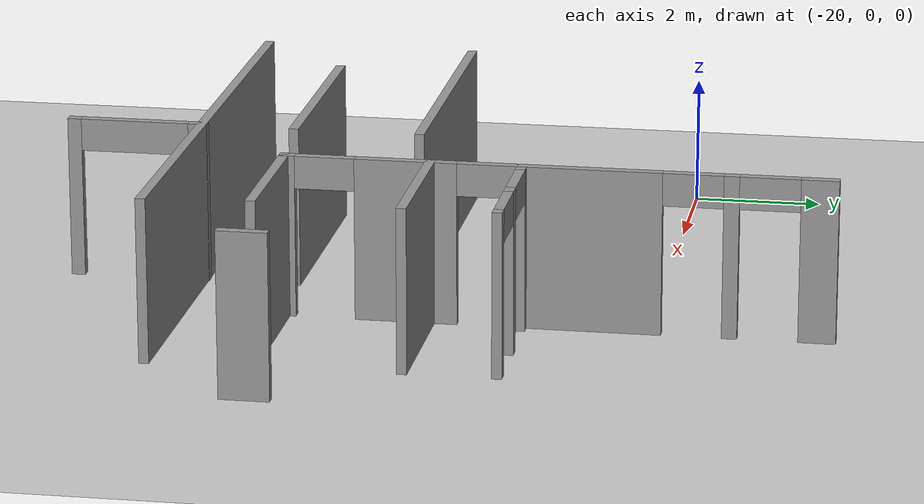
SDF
<sdf version="1.7">
 <world name="default">
  <model name="ground_plane">
   <static>1</static>
   <link name="link">
    <collision name="collision">
     <geometry><plane><normal>0 0 1</normal><size>100 100</size></plane></geometry>
     <surface><friction><ode><mu>100</mu><mu2>50</mu2></ode></friction></surface>
    </collision>
    <visual name="visual">
     <cast_shadows>0</cast_shadows>
     <geometry><plane><normal>0 0 1</normal><size>100 100</size></plane></geometry>
     <material>
      <script><uri>file://media/materials/scripts/gazebo.material</uri><name>Gazebo/Grey</name></script>
     </material>
    </visual>
   </link>
  </model>
  <model name="batimentH">
   <link name="Wall_14">
    <pose>-7.47746 0.99768 0 0 0 -1.5708</pose>
    <visual name="Wall_14_Visual_0">
     <pose>-3.88396 0 1.25 0 -0 0</pose>
     <geometry><box><size>0.55862 0.15 2.5</size></box></geometry>
     <material>
      <script><uri>file://media/materials/scripts/gazebo.material</uri><name>Gazebo/Grey</name></script>
      <ambient>1 1 1 1</ambient>
      <shader type="pixel"/>
     </material>
     <meta><layer>0</layer></meta>
    </visual>
    <visual name="Wall_14_Visual_1">
     <pose>-2.59002 0 1.25 0 -0 0</pose>
     <geometry><box><size>0.22926 0.15 2.5</size></box></geometry>
     <material>
      <script><uri>file://media/materials/scripts/gazebo.material</uri><name>Gazebo/Grey</name></script>
      <ambient>1 1 1 1</ambient>
      <shader type="pixel"/>
     </material>
     <meta><layer>0</layer></meta>
    </visual>
    <visual name="Wall_14_Visual_2">
     <pose>-0.49809 0 1.25 0 -0 0</pose>
     <geometry><box><size>2.15459 0.15 2.5</size></box></geometry>
     <material>
      <script><uri>file://media/materials/scripts/gazebo.material</uri><name>Gazebo/Grey</name></script>
      <ambient>1 1 1 1</ambient>
      <shader type="pixel"/>
     </material>
     <meta><layer>0</layer></meta>
    </visual>
    <visual name="Wall_14_Visual_3">
     <pose>2.25155 0 1.25 0 -0 0</pose>
     <geometry><box><size>1.54468 0.15 2.5</size></box></geometry>
     <material>
      <script><uri>file://media/materials/scripts/gazebo.material</uri><name>Gazebo/Grey</name></script>
      <ambient>1 1 1 1</ambient>
      <shader type="pixel"/>
     </material>
     <meta><layer>0</layer></meta>
    </visual>
    <visual name="Wall_14_Visual_4">
     <pose>4.04358 0 1.25 0 -0 0</pose>
     <geometry><box><size>0.239381 0.15 2.5</size></box></geometry>
     <material>
      <script><uri>file://media/materials/scripts/gazebo.material</uri><name>Gazebo/Grey</name></script>
      <ambient>1 1 1 1</ambient>
      <shader type="pixel"/>
     </material>
     <meta><layer>0</layer></meta>
    </visual>
    <visual name="Wall_14_Visual_5">
     <pose>-3.15465 0 2.25 0 -0 0</pose>
     <geometry><box><size>0.9 0.15 0.5</size></box></geometry>
     <material>
      <script><uri>file://media/materials/scripts/gazebo.material</uri><name>Gazebo/Grey</name></script>
      <ambient>1 1 1 1</ambient>
      <shader type="pixel"/>
     </material>
     <meta><layer>0</layer></meta>
    </visual>
    <visual name="Wall_14_Visual_6">
     <pose>-2.02539 0 2.25 0 -0 0</pose>
     <geometry><box><size>0.9 0.15 0.5</size></box></geometry>
     <material>
      <script><uri>file://media/materials/scripts/gazebo.material</uri><name>Gazebo/Grey</name></script>
      <ambient>1 1 1 1</ambient>
      <shader type="pixel"/>
     </material>
     <meta><layer>0</layer></meta>
    </visual>
    <visual name="Wall_14_Visual_7">
     <pose>1.02921 0 2.25 0 -0 0</pose>
     <geometry><box><size>0.9 0.15 0.5</size></box></geometry>
     <material>
      <script><uri>file://media/materials/scripts/gazebo.material</uri><name>Gazebo/Grey</name></script>
      <ambient>1 1 1 1</ambient>
      <shader type="pixel"/>
     </material>
     <meta><layer>0</layer></meta>
    </visual>
    <visual name="Wall_14_Visual_8">
     <pose>3.47389 0 2.25 0 -0 0</pose>
     <geometry><box><size>0.9 0.15 0.5</size></box></geometry>
     <material>
      <script><uri>file://media/materials/scripts/gazebo.material</uri><name>Gazebo/Grey</name></script>
      <ambient>1 1 1 1</ambient>
      <shader type="pixel"/>
     </material>
     <meta><layer>0</layer></meta>
    </visual>
    <collision name="Wall_14_Collision_0">
     <pose>-3.88396 0 1.25 0 -0 0</pose>
     <geometry><box><size>0.55862 0.15 2.5</size></box></geometry>
     <surface>
      <friction>
       <ode><mu>1</mu><mu2>1</mu2><fdir1>0 0 0</fdir1><slip1>0</slip1><slip2>0</slip2></ode>
       <torsional>
        <coefficient>1</coefficient>
        <patch_radius>0</patch_radius>
        <surface_radius>0</surface_radius>
        <use_patch_radius>1</use_patch_radius>
        <ode><slip>0</slip></ode>
       </torsional>
      </friction>
      <bounce><restitution_coefficient>0</restitution_coefficient><threshold>1e+06</threshold></bounce>
      <contact>
       <collide_without_contact>0</collide_without_contact>
       <collide_without_contact_bitmask>1</collide_without_contact_bitmask>
       <collide_bitmask>1</collide_bitmask>
       <ode>
        <soft_cfm>0</soft_cfm>
        <soft_erp>0.2</soft_erp>
        <kp>1e+13</kp>
        <kd>1</kd>
        <max_vel>0.01</max_vel>
        <min_depth>0</min_depth>
       </ode>
       <bullet>
        <split_impulse>1</split_impulse>
        <split_impulse_penetration_threshold>-0.01</split_impulse_penetration_threshold>
        <soft_cfm>0</soft_cfm>
        <soft_erp>0.2</soft_erp>
        <kp>1e+13</kp>
        <kd>1</kd>
       </bullet>
      </contact>
     </surface>
    </collision>
    <collision name="Wall_14_Collision_1">
     <pose>-2.59002 0 1.25 0 -0 0</pose>
     <geometry><box><size>0.22926 0.15 2.5</size></box></geometry>
     <surface>
      <friction>
       <ode><mu>1</mu><mu2>1</mu2><fdir1>0 0 0</fdir1><slip1>0</slip1><slip2>0</slip2></ode>
       <torsional>
        <coefficient>1</coefficient>
        <patch_radius>0</patch_radius>
        <surface_radius>0</surface_radius>
        <use_patch_radius>1</use_patch_radius>
        <ode><slip>0</slip></ode>
       </torsional>
      </friction>
      <bounce><restitution_coefficient>0</restitution_coefficient><threshold>1e+06</threshold></bounce>
      <contact>
       <collide_without_contact>0</collide_without_contact>
       <collide_without_contact_bitmask>1</collide_without_contact_bitmask>
       <collide_bitmask>1</collide_bitmask>
       <ode>
        <soft_cfm>0</soft_cfm>
        <soft_erp>0.2</soft_erp>
        <kp>1e+13</kp>
        <kd>1</kd>
        <max_vel>0.01</max_vel>
        <min_depth>0</min_depth>
       </ode>
       <bullet>
        <split_impulse>1</split_impulse>
        <split_impulse_penetration_threshold>-0.01</split_impulse_penetration_threshold>
        <soft_cfm>0</soft_cfm>
        <soft_erp>0.2</soft_erp>
        <kp>1e+13</kp>
        <kd>1</kd>
       </bullet>
      </contact>
     </surface>
    </collision>
    <collision name="Wall_14_Collision_2">
     <pose>-0.49809 0 1.25 0 -0 0</pose>
     <geometry><box><size>2.15459 0.15 2.5</size></box></geometry>
     <surface>
      <friction>
       <ode><mu>1</mu><mu2>1</mu2><fdir1>0 0 0</fdir1><slip1>0</slip1><slip2>0</slip2></ode>
       <torsional>
        <coefficient>1</coefficient>
        <patch_radius>0</patch_radius>
        <surface_radius>0</surface_radius>
        <use_patch_radius>1</use_patch_radius>
        <ode><slip>0</slip></ode>
       </torsional>
      </friction>
      <bounce><restitution_coefficient>0</restitution_coefficient><threshold>1e+06</threshold></bounce>
      <contact>
       <collide_without_contact>0</collide_without_contact>
       <collide_without_contact_bitmask>1</collide_without_contact_bitmask>
       <collide_bitmask>1</collide_bitmask>
       <ode>
        <soft_cfm>0</soft_cfm>
        <soft_erp>0.2</soft_erp>
        <kp>1e+13</kp>
        <kd>1</kd>
        <max_vel>0.01</max_vel>
        <min_depth>0</min_depth>
       </ode>
       <bullet>
        <split_impulse>1</split_impulse>
        <split_impulse_penetration_threshold>-0.01</split_impulse_penetration_threshold>
        <soft_cfm>0</soft_cfm>
        <soft_erp>0.2</soft_erp>
        <kp>1e+13</kp>
        <kd>1</kd>
       </bullet>
      </contact>
     </surface>
    </collision>
    <collision name="Wall_14_Collision_3">
     <pose>2.25155 0 1.25 0 -0 0</pose>
     <geometry><box><size>1.54468 0.15 2.5</size></box></geometry>
     <surface>
      <friction>
       <ode><mu>1</mu><mu2>1</mu2><fdir1>0 0 0</fdir1><slip1>0</slip1><slip2>0</slip2></ode>
       <torsional>
        <coefficient>1</coefficient>
        <patch_radius>0</patch_radius>
        <surface_radius>0</surface_radius>
        <use_patch_radius>1</use_patch_radius>
        <ode><slip>0</slip></ode>
       </torsional>
      </friction>
      <bounce><restitution_coefficient>0</restitution_coefficient><threshold>1e+06</threshold></bounce>
      <contact>
       <collide_without_contact>0</collide_without_contact>
       <collide_without_contact_bitmask>1</collide_without_contact_bitmask>
       <collide_bitmask>1</collide_bitmask>
       <ode>
        <soft_cfm>0</soft_cfm>
        <soft_erp>0.2</soft_erp>
        <kp>1e+13</kp>
        <kd>1</kd>
        <max_vel>0.01</max_vel>
        <min_depth>0</min_depth>
       </ode>
       <bullet>
        <split_impulse>1</split_impulse>
        <split_impulse_penetration_threshold>-0.01</split_impulse_penetration_threshold>
        <soft_cfm>0</soft_cfm>
        <soft_erp>0.2</soft_erp>
        <kp>1e+13</kp>
        <kd>1</kd>
       </bullet>
      </contact>
     </surface>
    </collision>
    <collision name="Wall_14_Collision_4">
     <pose>4.04358 0 1.25 0 -0 0</pose>
     <geometry><box><size>0.239381 0.15 2.5</size></box></geometry>
     <surface>
      <friction>
       <ode><mu>1</mu><mu2>1</mu2><fdir1>0 0 0</fdir1><slip1>0</slip1><slip2>0</slip2></ode>
       <torsional>
        <coefficient>1</coefficient>
        <patch_radius>0</patch_radius>
        <surface_radius>0</surface_radius>
        <use_patch_radius>1</use_patch_radius>
        <ode><slip>0</slip></ode>
       </torsional>
      </friction>
      <bounce><restitution_coefficient>0</restitution_coefficient><threshold>1e+06</threshold></bounce>
      <contact>
       <collide_without_contact>0</collide_without_contact>
       <collide_without_contact_bitmask>1</collide_without_contact_bitmask>
       <collide_bitmask>1</collide_bitmask>
       <ode>
        <soft_cfm>0</soft_cfm>
        <soft_erp>0.2</soft_erp>
        <kp>1e+13</kp>
        <kd>1</kd>
        <max_vel>0.01</max_vel>
        <min_depth>0</min_depth>
       </ode>
       <bullet>
        <split_impulse>1</split_impulse>
        <split_impulse_penetration_threshold>-0.01</split_impulse_penetration_threshold>
        <soft_cfm>0</soft_cfm>
        <soft_erp>0.2</soft_erp>
        <kp>1e+13</kp>
        <kd>1</kd>
       </bullet>
      </contact>
     </surface>
    </collision>
    <collision name="Wall_14_Collision_5">
     <pose>-3.15465 0 2.25 0 -0 0</pose>
     <geometry><box><size>0.9 0.15 0.5</size></box></geometry>
     <surface>
      <friction>
       <ode><mu>1</mu><mu2>1</mu2><fdir1>0 0 0</fdir1><slip1>0</slip1><slip2>0</slip2></ode>
       <torsional>
        <coefficient>1</coefficient>
        <patch_radius>0</patch_radius>
        <surface_radius>0</surface_radius>
        <use_patch_radius>1</use_patch_radius>
        <ode><slip>0</slip></ode>
       </torsional>
      </friction>
      <bounce><restitution_coefficient>0</restitution_coefficient><threshold>1e+06</threshold></bounce>
      <contact>
       <collide_without_contact>0</collide_without_contact>
       <collide_without_contact_bitmask>1</collide_without_contact_bitmask>
       <collide_bitmask>1</collide_bitmask>
       <ode>
        <soft_cfm>0</soft_cfm>
        <soft_erp>0.2</soft_erp>
        <kp>1e+13</kp>
        <kd>1</kd>
        <max_vel>0.01</max_vel>
        <min_depth>0</min_depth>
       </ode>
       <bullet>
        <split_impulse>1</split_impulse>
        <split_impulse_penetration_threshold>-0.01</split_impulse_penetration_threshold>
        <soft_cfm>0</soft_cfm>
        <soft_erp>0.2</soft_erp>
        <kp>1e+13</kp>
        <kd>1</kd>
       </bullet>
      </contact>
     </surface>
    </collision>
    <collision name="Wall_14_Collision_6">
     <pose>-2.02539 0 2.25 0 -0 0</pose>
     <geometry><box><size>0.9 0.15 0.5</size></box></geometry>
     <surface>
      <friction>
       <ode><mu>1</mu><mu2>1</mu2><fdir1>0 0 0</fdir1><slip1>0</slip1><slip2>0</slip2></ode>
       <torsional>
        <coefficient>1</coefficient>
        <patch_radius>0</patch_radius>
        <surface_radius>0</surface_radius>
        <use_patch_radius>1</use_patch_radius>
        <ode><slip>0</slip></ode>
       </torsional>
      </friction>
      <bounce><restitution_coefficient>0</restitution_coefficient><threshold>1e+06</threshold></bounce>
      <contact>
       <collide_without_contact>0</collide_without_contact>
       <collide_without_contact_bitmask>1</collide_without_contact_bitmask>
       <collide_bitmask>1</collide_bitmask>
       <ode>
        <soft_cfm>0</soft_cfm>
        <soft_erp>0.2</soft_erp>
        <kp>1e+13</kp>
        <kd>1</kd>
        <max_vel>0.01</max_vel>
        <min_depth>0</min_depth>
       </ode>
       <bullet>
        <split_impulse>1</split_impulse>
        <split_impulse_penetration_threshold>-0.01</split_impulse_penetration_threshold>
        <soft_cfm>0</soft_cfm>
        <soft_erp>0.2</soft_erp>
        <kp>1e+13</kp>
        <kd>1</kd>
       </bullet>
      </contact>
     </surface>
    </collision>
    <collision name="Wall_14_Collision_7">
     <pose>1.02921 0 2.25 0 -0 0</pose>
     <geometry><box><size>0.9 0.15 0.5</size></box></geometry>
     <surface>
      <friction>
       <ode><mu>1</mu><mu2>1</mu2><fdir1>0 0 0</fdir1><slip1>0</slip1><slip2>0</slip2></ode>
       <torsional>
        <coefficient>1</coefficient>
        <patch_radius>0</patch_radius>
        <surface_radius>0</surface_radius>
        <use_patch_radius>1</use_patch_radius>
        <ode><slip>0</slip></ode>
       </torsional>
      </friction>
      <bounce><restitution_coefficient>0</restitution_coefficient><threshold>1e+06</threshold></bounce>
      <contact>
       <collide_without_contact>0</collide_without_contact>
       <collide_without_contact_bitmask>1</collide_without_contact_bitmask>
       <collide_bitmask>1</collide_bitmask>
       <ode>
        <soft_cfm>0</soft_cfm>
        <soft_erp>0.2</soft_erp>
        <kp>1e+13</kp>
        <kd>1</kd>
        <max_vel>0.01</max_vel>
        <min_depth>0</min_depth>
       </ode>
       <bullet>
        <split_impulse>1</split_impulse>
        <split_impulse_penetration_threshold>-0.01</split_impulse_penetration_threshold>
        <soft_cfm>0</soft_cfm>
        <soft_erp>0.2</soft_erp>
        <kp>1e+13</kp>
        <kd>1</kd>
       </bullet>
      </contact>
     </surface>
    </collision>
    <collision name="Wall_14_Collision_8">
     <pose>3.47389 0 2.25 0 -0 0</pose>
     <geometry><box><size>0.9 0.15 0.5</size></box></geometry>
     <surface>
      <friction>
       <ode><mu>1</mu><mu2>1</mu2><fdir1>0 0 0</fdir1><slip1>0</slip1><slip2>0</slip2></ode>
       <torsional>
        <coefficient>1</coefficient>
        <patch_radius>0</patch_radius>
        <surface_radius>0</surface_radius>
        <use_patch_radius>1</use_patch_radius>
        <ode><slip>0</slip></ode>
       </torsional>
      </friction>
      <bounce><restitution_coefficient>0</restitution_coefficient><threshold>1e+06</threshold></bounce>
      <contact>
       <collide_without_contact>0</collide_without_contact>
       <collide_without_contact_bitmask>1</collide_without_contact_bitmask>
       <collide_bitmask>1</collide_bitmask>
       <ode>
        <soft_cfm>0</soft_cfm>
        <soft_erp>0.2</soft_erp>
        <kp>1e+13</kp>
        <kd>1</kd>
        <max_vel>0.01</max_vel>
        <min_depth>0</min_depth>
       </ode>
       <bullet>
        <split_impulse>1</split_impulse>
        <split_impulse_penetration_threshold>-0.01</split_impulse_penetration_threshold>
        <soft_cfm>0</soft_cfm>
        <soft_erp>0.2</soft_erp>
        <kp>1e+13</kp>
        <kd>1</kd>
       </bullet>
      </contact>
     </surface>
    </collision>
   </link>
   <link name="Wall_15">
    <pose>-6.31775 -3.09056 0 0 -0 0</pose>
    <visual name="Wall_15_Visual">
     <pose>0 0 1.25 0 -0 0</pose>
     <geometry><box><size>2.5 0.15 2.5</size></box></geometry>
     <material>
      <script><uri>file://media/materials/scripts/gazebo.material</uri><name>Gazebo/Grey</name></script>
      <ambient>1 1 1 1</ambient>
      <shader type="pixel"/>
     </material>
     <meta><layer>0</layer></meta>
    </visual>
    <collision name="Wall_15_Collision">
     <pose>0 0 1.25 0 -0 0</pose>
     <geometry><box><size>2.5 0.15 2.5</size></box></geometry>
     <surface>
      <friction>
       <ode><mu>1</mu><mu2>1</mu2><fdir1>0 0 0</fdir1><slip1>0</slip1><slip2>0</slip2></ode>
       <torsional>
        <coefficient>1</coefficient>
        <patch_radius>0</patch_radius>
        <surface_radius>0</surface_radius>
        <use_patch_radius>1</use_patch_radius>
        <ode><slip>0</slip></ode>
       </torsional>
      </friction>
      <bounce><restitution_coefficient>0</restitution_coefficient><threshold>1e+06</threshold></bounce>
      <contact>
       <collide_without_contact>0</collide_without_contact>
       <collide_without_contact_bitmask>1</collide_without_contact_bitmask>
       <collide_bitmask>1</collide_bitmask>
       <ode>
        <soft_cfm>0</soft_cfm>
        <soft_erp>0.2</soft_erp>
        <kp>1e+13</kp>
        <kd>1</kd>
        <max_vel>0.01</max_vel>
        <min_depth>0</min_depth>
       </ode>
       <bullet>
        <split_impulse>1</split_impulse>
        <split_impulse_penetration_threshold>-0.01</split_impulse_penetration_threshold>
        <soft_cfm>0</soft_cfm>
        <soft_erp>0.2</soft_erp>
        <kp>1e+13</kp>
        <kd>1</kd>
       </bullet>
      </contact>
     </surface>
    </collision>
   </link>
   <link name="Wall_18">
    <pose>-6.30246 -0.894472 0 0 -0 0</pose>
    <visual name="Wall_18_Visual">
     <pose>0 0 1.25 0 -0 0</pose>
     <geometry><box><size>2.5 0.15 2.5</size></box></geometry>
     <material>
      <script><uri>file://media/materials/scripts/gazebo.material</uri><name>Gazebo/Grey</name></script>
      <ambient>1 1 1 1</ambient>
      <shader type="pixel"/>
     </material>
     <meta><layer>0</layer></meta>
    </visual>
    <collision name="Wall_18_Collision">
     <pose>0 0 1.25 0 -0 0</pose>
     <geometry><box><size>2.5 0.15 2.5</size></box></geometry>
     <surface>
      <friction>
       <ode><mu>1</mu><mu2>1</mu2><fdir1>0 0 0</fdir1><slip1>0</slip1><slip2>0</slip2></ode>
       <torsional>
        <coefficient>1</coefficient>
        <patch_radius>0</patch_radius>
        <surface_radius>0</surface_radius>
        <use_patch_radius>1</use_patch_radius>
        <ode><slip>0</slip></ode>
       </torsional>
      </friction>
      <bounce><restitution_coefficient>0</restitution_coefficient><threshold>1e+06</threshold></bounce>
      <contact>
       <collide_without_contact>0</collide_without_contact>
       <collide_without_contact_bitmask>1</collide_without_contact_bitmask>
       <collide_bitmask>1</collide_bitmask>
       <ode>
        <soft_cfm>0</soft_cfm>
        <soft_erp>0.2</soft_erp>
        <kp>1e+13</kp>
        <kd>1</kd>
        <max_vel>0.01</max_vel>
        <min_depth>0</min_depth>
       </ode>
       <bullet>
        <split_impulse>1</split_impulse>
        <split_impulse_penetration_threshold>-0.01</split_impulse_penetration_threshold>
        <soft_cfm>0</soft_cfm>
        <soft_erp>0.2</soft_erp>
        <kp>1e+13</kp>
        <kd>1</kd>
       </bullet>
      </contact>
     </surface>
    </collision>
   </link>
   <link name="Wall_2">
    <pose>-9.42218 -4.67161 0 0 -0 0</pose>
    <visual name="Wall_2_Visual">
     <pose>0 0 1.25 0 -0 0</pose>
     <geometry><box><size>9 0.15 2.5</size></box></geometry>
     <material>
      <script><uri>file://media/materials/scripts/gazebo.material</uri><name>Gazebo/Grey</name></script>
      <ambient>1 1 1 1</ambient>
      <shader type="pixel"/>
     </material>
     <meta><layer>0</layer></meta>
    </visual>
    <collision name="Wall_2_Collision">
     <pose>0 0 1.25 0 -0 0</pose>
     <geometry><box><size>9 0.15 2.5</size></box></geometry>
     <surface>
      <friction>
       <ode><mu>1</mu><mu2>1</mu2><fdir1>0 0 0</fdir1><slip1>0</slip1><slip2>0</slip2></ode>
       <torsional>
        <coefficient>1</coefficient>
        <patch_radius>0</patch_radius>
        <surface_radius>0</surface_radius>
        <use_patch_radius>1</use_patch_radius>
        <ode><slip>0</slip></ode>
       </torsional>
      </friction>
      <bounce><restitution_coefficient>0</restitution_coefficient><threshold>1e+06</threshold></bounce>
      <contact>
       <collide_without_contact>0</collide_without_contact>
       <collide_without_contact_bitmask>1</collide_without_contact_bitmask>
       <collide_bitmask>1</collide_bitmask>
       <ode>
        <soft_cfm>0</soft_cfm>
        <soft_erp>0.2</soft_erp>
        <kp>1e+13</kp>
        <kd>1</kd>
        <max_vel>0.01</max_vel>
        <min_depth>0</min_depth>
       </ode>
       <bullet>
        <split_impulse>1</split_impulse>
        <split_impulse_penetration_threshold>-0.01</split_impulse_penetration_threshold>
        <soft_cfm>0</soft_cfm>
        <soft_erp>0.2</soft_erp>
        <kp>1e+13</kp>
        <kd>1</kd>
       </bullet>
      </contact>
     </surface>
    </collision>
   </link>
   <link name="Wall_24">
    <pose>-6.30874 0.487126 0 0 -0 7.8e-05</pose>
    <visual name="Wall_24_Visual_0">
     <pose>-1.09192 0 1.25 0 -0 0</pose>
     <geometry><box><size>0.294914 0.15 2.5</size></box></geometry>
     <material>
      <script><uri>file://media/materials/scripts/gazebo.material</uri><name>Gazebo/Grey</name></script>
      <ambient>1 1 1 1</ambient>
      <shader type="pixel"/>
     </material>
     <meta><layer>0</layer></meta>
    </visual>
    <visual name="Wall_24_Visual_1">
     <pose>0.061146 0 1.25 0 -0 0</pose>
     <geometry><box><size>0.211218 0.15 2.5</size></box></geometry>
     <material>
      <script><uri>file://media/materials/scripts/gazebo.material</uri><name>Gazebo/Grey</name></script>
      <ambient>1 1 1 1</ambient>
      <shader type="pixel"/>
     </material>
     <meta><layer>0</layer></meta>
    </visual>
    <visual name="Wall_24_Visual_2">
     <pose>1.15307 0 1.25 0 -0 0</pose>
     <geometry><box><size>0.172622 0.15 2.5</size></box></geometry>
     <material>
      <script><uri>file://media/materials/scripts/gazebo.material</uri><name>Gazebo/Grey</name></script>
      <ambient>1 1 1 1</ambient>
      <shader type="pixel"/>
     </material>
     <meta><layer>0</layer></meta>
    </visual>
    <visual name="Wall_24_Visual_3">
     <pose>-0.494463 0 2.25 0 -0 0</pose>
     <geometry><box><size>0.9 0.15 0.5</size></box></geometry>
     <material>
      <script><uri>file://media/materials/scripts/gazebo.material</uri><name>Gazebo/Grey</name></script>
      <ambient>1 1 1 1</ambient>
      <shader type="pixel"/>
     </material>
     <meta><layer>0</layer></meta>
    </visual>
    <visual name="Wall_24_Visual_4">
     <pose>0.616755 0 2.25 0 -0 0</pose>
     <geometry><box><size>0.9 0.15 0.5</size></box></geometry>
     <material>
      <script><uri>file://media/materials/scripts/gazebo.material</uri><name>Gazebo/Grey</name></script>
      <ambient>1 1 1 1</ambient>
      <shader type="pixel"/>
     </material>
     <meta><layer>0</layer></meta>
    </visual>
    <collision name="Wall_24_Collision_0">
     <pose>-1.09192 0 1.25 0 -0 0</pose>
     <geometry><box><size>0.294914 0.15 2.5</size></box></geometry>
     <surface>
      <friction>
       <ode><mu>1</mu><mu2>1</mu2><fdir1>0 0 0</fdir1><slip1>0</slip1><slip2>0</slip2></ode>
       <torsional>
        <coefficient>1</coefficient>
        <patch_radius>0</patch_radius>
        <surface_radius>0</surface_radius>
        <use_patch_radius>1</use_patch_radius>
        <ode><slip>0</slip></ode>
       </torsional>
      </friction>
      <bounce><restitution_coefficient>0</restitution_coefficient><threshold>1e+06</threshold></bounce>
      <contact>
       <collide_without_contact>0</collide_without_contact>
       <collide_without_contact_bitmask>1</collide_without_contact_bitmask>
       <collide_bitmask>1</collide_bitmask>
       <ode>
        <soft_cfm>0</soft_cfm>
        <soft_erp>0.2</soft_erp>
        <kp>1e+13</kp>
        <kd>1</kd>
        <max_vel>0.01</max_vel>
        <min_depth>0</min_depth>
       </ode>
       <bullet>
        <split_impulse>1</split_impulse>
        <split_impulse_penetration_threshold>-0.01</split_impulse_penetration_threshold>
        <soft_cfm>0</soft_cfm>
        <soft_erp>0.2</soft_erp>
        <kp>1e+13</kp>
        <kd>1</kd>
       </bullet>
      </contact>
     </surface>
    </collision>
    <collision name="Wall_24_Collision_2">
     <pose>1.15307 0 1.25 0 -0 0</pose>
     <geometry><box><size>0.172622 0.15 2.5</size></box></geometry>
     <surface>
      <friction>
       <ode><mu>1</mu><mu2>1</mu2><fdir1>0 0 0</fdir1><slip1>0</slip1><slip2>0</slip2></ode>
       <torsional>
        <coefficient>1</coefficient>
        <patch_radius>0</patch_radius>
        <surface_radius>0</surface_radius>
        <use_patch_radius>1</use_patch_radius>
        <ode><slip>0</slip></ode>
       </torsional>
      </friction>
      <bounce><restitution_coefficient>0</restitution_coefficient><threshold>1e+06</threshold></bounce>
      <contact>
       <collide_without_contact>0</collide_without_contact>
       <collide_without_contact_bitmask>1</collide_without_contact_bitmask>
       <collide_bitmask>1</collide_bitmask>
       <ode>
        <soft_cfm>0</soft_cfm>
        <soft_erp>0.2</soft_erp>
        <kp>1e+13</kp>
        <kd>1</kd>
        <max_vel>0.01</max_vel>
        <min_depth>0</min_depth>
       </ode>
       <bullet>
        <split_impulse>1</split_impulse>
        <split_impulse_penetration_threshold>-0.01</split_impulse_penetration_threshold>
        <soft_cfm>0</soft_cfm>
        <soft_erp>0.2</soft_erp>
        <kp>1e+13</kp>
        <kd>1</kd>
       </bullet>
      </contact>
     </surface>
    </collision>
    <collision name="Wall_24_Collision_1">
     <pose>0.061146 0 1.25 0 -0 0</pose>
     <geometry><box><size>0.211218 0.15 2.5</size></box></geometry>
     <surface>
      <friction>
       <ode><mu>1</mu><mu2>1</mu2><fdir1>0 0 0</fdir1><slip1>0</slip1><slip2>0</slip2></ode>
       <torsional>
        <coefficient>1</coefficient>
        <patch_radius>0</patch_radius>
        <surface_radius>0</surface_radius>
        <use_patch_radius>1</use_patch_radius>
        <ode><slip>0</slip></ode>
       </torsional>
      </friction>
      <bounce><restitution_coefficient>0</restitution_coefficient><threshold>1e+06</threshold></bounce>
      <contact>
       <collide_without_contact>0</collide_without_contact>
       <collide_without_contact_bitmask>1</collide_without_contact_bitmask>
       <collide_bitmask>1</collide_bitmask>
       <ode>
        <soft_cfm>0</soft_cfm>
        <soft_erp>0.2</soft_erp>
        <kp>1e+13</kp>
        <kd>1</kd>
        <max_vel>0.01</max_vel>
        <min_depth>0</min_depth>
       </ode>
       <bullet>
        <split_impulse>1</split_impulse>
        <split_impulse_penetration_threshold>-0.01</split_impulse_penetration_threshold>
        <soft_cfm>0</soft_cfm>
        <soft_erp>0.2</soft_erp>
        <kp>1e+13</kp>
        <kd>1</kd>
       </bullet>
      </contact>
     </surface>
    </collision>
    <collision name="Wall_24_Collision_3">
     <pose>-0.494463 0 2.25 0 -0 0</pose>
     <geometry><box><size>0.9 0.15 0.5</size></box></geometry>
     <surface>
      <friction>
       <ode><mu>1</mu><mu2>1</mu2><fdir1>0 0 0</fdir1><slip1>0</slip1><slip2>0</slip2></ode>
       <torsional>
        <coefficient>1</coefficient>
        <patch_radius>0</patch_radius>
        <surface_radius>0</surface_radius>
        <use_patch_radius>1</use_patch_radius>
        <ode><slip>0</slip></ode>
       </torsional>
      </friction>
      <bounce><restitution_coefficient>0</restitution_coefficient><threshold>1e+06</threshold></bounce>
      <contact>
       <collide_without_contact>0</collide_without_contact>
       <collide_without_contact_bitmask>1</collide_without_contact_bitmask>
       <collide_bitmask>1</collide_bitmask>
       <ode>
        <soft_cfm>0</soft_cfm>
        <soft_erp>0.2</soft_erp>
        <kp>1e+13</kp>
        <kd>1</kd>
        <max_vel>0.01</max_vel>
        <min_depth>0</min_depth>
       </ode>
       <bullet>
        <split_impulse>1</split_impulse>
        <split_impulse_penetration_threshold>-0.01</split_impulse_penetration_threshold>
        <soft_cfm>0</soft_cfm>
        <soft_erp>0.2</soft_erp>
        <kp>1e+13</kp>
        <kd>1</kd>
       </bullet>
      </contact>
     </surface>
    </collision>
    <collision name="Wall_24_Collision_4">
     <pose>0.616755 0 2.25 0 -0 0</pose>
     <geometry><box><size>0.9 0.15 0.5</size></box></geometry>
     <surface>
      <friction>
       <ode><mu>1</mu><mu2>1</mu2><fdir1>0 0 0</fdir1><slip1>0</slip1><slip2>0</slip2></ode>
       <torsional>
        <coefficient>1</coefficient>
        <patch_radius>0</patch_radius>
        <surface_radius>0</surface_radius>
        <use_patch_radius>1</use_patch_radius>
        <ode><slip>0</slip></ode>
       </torsional>
      </friction>
      <bounce><restitution_coefficient>0</restitution_coefficient><threshold>1e+06</threshold></bounce>
      <contact>
       <collide_without_contact>0</collide_without_contact>
       <collide_without_contact_bitmask>1</collide_without_contact_bitmask>
       <collide_bitmask>1</collide_bitmask>
       <ode>
        <soft_cfm>0</soft_cfm>
        <soft_erp>0.2</soft_erp>
        <kp>1e+13</kp>
        <kd>1</kd>
        <max_vel>0.01</max_vel>
        <min_depth>0</min_depth>
       </ode>
       <bullet>
        <split_impulse>1</split_impulse>
        <split_impulse_penetration_threshold>-0.01</split_impulse_penetration_threshold>
        <soft_cfm>0</soft_cfm>
        <soft_erp>0.2</soft_erp>
        <kp>1e+13</kp>
        <kd>1</kd>
       </bullet>
      </contact>
     </surface>
    </collision>
   </link>
   <link name="Wall_26">
    <pose>-11.3608 -1.29937 0 0 -0 3.14159</pose>
    <visual name="Wall_26_Visual">
     <pose>0 0 1.25 0 -0 0</pose>
     <geometry><box><size>5 0.15 2.5</size></box></geometry>
     <material>
      <script><uri>file://media/materials/scripts/gazebo.material</uri><name>Gazebo/Grey</name></script>
      <ambient>1 1 1 1</ambient>
      <shader type="pixel"/>
     </material>
     <meta><layer>0</layer></meta>
    </visual>
    <collision name="Wall_26_Collision">
     <pose>0 0 1.25 0 -0 0</pose>
     <geometry><box><size>5 0.15 2.5</size></box></geometry>
     <surface>
      <friction>
       <ode><mu>1</mu><mu2>1</mu2><fdir1>0 0 0</fdir1><slip1>0</slip1><slip2>0</slip2></ode>
       <torsional>
        <coefficient>1</coefficient>
        <patch_radius>0</patch_radius>
        <surface_radius>0</surface_radius>
        <use_patch_radius>1</use_patch_radius>
        <ode><slip>0</slip></ode>
       </torsional>
      </friction>
      <bounce><restitution_coefficient>0</restitution_coefficient><threshold>1e+06</threshold></bounce>
      <contact>
       <collide_without_contact>0</collide_without_contact>
       <collide_without_contact_bitmask>1</collide_without_contact_bitmask>
       <collide_bitmask>1</collide_bitmask>
       <ode>
        <soft_cfm>0</soft_cfm>
        <soft_erp>0.2</soft_erp>
        <kp>1e+13</kp>
        <kd>1</kd>
        <max_vel>0.01</max_vel>
        <min_depth>0</min_depth>
       </ode>
       <bullet>
        <split_impulse>1</split_impulse>
        <split_impulse_penetration_threshold>-0.01</split_impulse_penetration_threshold>
        <soft_cfm>0</soft_cfm>
        <soft_erp>0.2</soft_erp>
        <kp>1e+13</kp>
        <kd>1</kd>
       </bullet>
      </contact>
     </surface>
    </collision>
   </link>
   <link name="Wall_28">
    <pose>-10.7271 -3.23202 0 0 -0 3.14159</pose>
    <visual name="Wall_28_Visual">
     <pose>0 0 1.25 0 -0 0</pose>
     <geometry><box><size>3.75 0.15 2.5</size></box></geometry>
     <material>
      <script><uri>file://media/materials/scripts/gazebo.material</uri><name>Gazebo/Grey</name></script>
      <ambient>1 1 1 1</ambient>
      <shader type="pixel"/>
     </material>
     <meta><layer>0</layer></meta>
    </visual>
    <collision name="Wall_28_Collision">
     <pose>0 0 1.25 0 -0 0</pose>
     <geometry><box><size>3.75 0.15 2.5</size></box></geometry>
     <surface>
      <friction>
       <ode><mu>1</mu><mu2>1</mu2><fdir1>0 0 0</fdir1><slip1>0</slip1><slip2>0</slip2></ode>
       <torsional>
        <coefficient>1</coefficient>
        <patch_radius>0</patch_radius>
        <surface_radius>0</surface_radius>
        <use_patch_radius>1</use_patch_radius>
        <ode><slip>0</slip></ode>
       </torsional>
      </friction>
      <bounce><restitution_coefficient>0</restitution_coefficient><threshold>1e+06</threshold></bounce>
      <contact>
       <collide_without_contact>0</collide_without_contact>
       <collide_without_contact_bitmask>1</collide_without_contact_bitmask>
       <collide_bitmask>1</collide_bitmask>
       <ode>
        <soft_cfm>0</soft_cfm>
        <soft_erp>0.2</soft_erp>
        <kp>1e+13</kp>
        <kd>1</kd>
        <max_vel>0.01</max_vel>
        <min_depth>0</min_depth>
       </ode>
       <bullet>
        <split_impulse>1</split_impulse>
        <split_impulse_penetration_threshold>-0.01</split_impulse_penetration_threshold>
        <soft_cfm>0</soft_cfm>
        <soft_erp>0.2</soft_erp>
        <kp>1e+13</kp>
        <kd>1</kd>
       </bullet>
      </contact>
     </surface>
    </collision>
   </link>
   <link name="Wall_44">
    <pose>-3.66203 -2.89817 0 0 -0 1.5708</pose>
    <visual name="Wall_44_Visual">
     <pose>0 0 1.25 0 -0 0</pose>
     <geometry><box><size>0.75 0.15 2.5</size></box></geometry>
     <material>
      <script><uri>file://media/materials/scripts/gazebo.material</uri><name>Gazebo/Grey</name></script>
      <ambient>1 1 1 1</ambient>
      <shader type="pixel"/>
     </material>
     <meta><layer>0</layer></meta>
    </visual>
    <collision name="Wall_44_Collision">
     <pose>0 0 1.25 0 -0 0</pose>
     <geometry><box><size>0.75 0.15 2.5</size></box></geometry>
     <surface>
      <friction>
       <ode><mu>1</mu><mu2>1</mu2><fdir1>0 0 0</fdir1><slip1>0</slip1><slip2>0</slip2></ode>
       <torsional>
        <coefficient>1</coefficient>
        <patch_radius>0</patch_radius>
        <surface_radius>0</surface_radius>
        <use_patch_radius>1</use_patch_radius>
        <ode><slip>0</slip></ode>
       </torsional>
      </friction>
      <bounce><restitution_coefficient>0</restitution_coefficient><threshold>1e+06</threshold></bounce>
      <contact>
       <collide_without_contact>0</collide_without_contact>
       <collide_without_contact_bitmask>1</collide_without_contact_bitmask>
       <collide_bitmask>1</collide_bitmask>
       <ode>
        <soft_cfm>0</soft_cfm>
        <soft_erp>0.2</soft_erp>
        <kp>1e+13</kp>
        <kd>1</kd>
        <max_vel>0.01</max_vel>
        <min_depth>0</min_depth>
       </ode>
       <bullet>
        <split_impulse>1</split_impulse>
        <split_impulse_penetration_threshold>-0.01</split_impulse_penetration_threshold>
        <soft_cfm>0</soft_cfm>
        <soft_erp>0.2</soft_erp>
        <kp>1e+13</kp>
        <kd>1</kd>
       </bullet>
      </contact>
     </surface>
    </collision>
   </link>
   <link name="Wall_48">
    <pose>-8.94417 -5.67498 0 0 0 -1.5708</pose>
    <visual name="Wall_48_Visual_0">
     <pose>-0.940335 0 1.25 0 -0 0</pose>
     <geometry><box><size>0.295144 0.15 2.5</size></box></geometry>
     <material>
      <script><uri>file://media/materials/scripts/gazebo.material</uri><name>Gazebo/Grey</name></script>
      <ambient>1 1 1 1</ambient>
      <shader type="pixel"/>
     </material>
     <meta><layer>0</layer></meta>
    </visual>
    <visual name="Wall_48_Visual_1">
     <pose>0.981555 0 1.25 0 -0 0</pose>
     <geometry><box><size>0.212704 0.15 2.5</size></box></geometry>
     <material>
      <script><uri>file://media/materials/scripts/gazebo.material</uri><name>Gazebo/Grey</name></script>
      <ambient>1 1 1 1</ambient>
      <shader type="pixel"/>
     </material>
     <meta><layer>0</layer></meta>
    </visual>
    <visual name="Wall_48_Visual_2">
     <pose>0.04122 0 2.25 0 -0 0</pose>
     <geometry><box><size>1.66797 0.15 0.5</size></box></geometry>
     <material>
      <script><uri>file://media/materials/scripts/gazebo.material</uri><name>Gazebo/Grey</name></script>
      <ambient>1 1 1 1</ambient>
      <shader type="pixel"/>
     </material>
     <meta><layer>0</layer></meta>
    </visual>
    <collision name="Wall_48_Collision_0">
     <pose>-0.940335 0 1.25 0 -0 0</pose>
     <geometry><box><size>0.295144 0.15 2.5</size></box></geometry>
     <surface>
      <friction>
       <ode><mu>1</mu><mu2>1</mu2><fdir1>0 0 0</fdir1><slip1>0</slip1><slip2>0</slip2></ode>
       <torsional>
        <coefficient>1</coefficient>
        <patch_radius>0</patch_radius>
        <surface_radius>0</surface_radius>
        <use_patch_radius>1</use_patch_radius>
        <ode><slip>0</slip></ode>
       </torsional>
      </friction>
      <bounce><restitution_coefficient>0</restitution_coefficient><threshold>1e+06</threshold></bounce>
      <contact>
       <collide_without_contact>0</collide_without_contact>
       <collide_without_contact_bitmask>1</collide_without_contact_bitmask>
       <collide_bitmask>1</collide_bitmask>
       <ode>
        <soft_cfm>0</soft_cfm>
        <soft_erp>0.2</soft_erp>
        <kp>1e+13</kp>
        <kd>1</kd>
        <max_vel>0.01</max_vel>
        <min_depth>0</min_depth>
       </ode>
       <bullet>
        <split_impulse>1</split_impulse>
        <split_impulse_penetration_threshold>-0.01</split_impulse_penetration_threshold>
        <soft_cfm>0</soft_cfm>
        <soft_erp>0.2</soft_erp>
        <kp>1e+13</kp>
        <kd>1</kd>
       </bullet>
      </contact>
     </surface>
    </collision>
    <collision name="Wall_48_Collision_1">
     <pose>0.981555 0 1.25 0 -0 0</pose>
     <geometry><box><size>0.212704 0.15 2.5</size></box></geometry>
     <surface>
      <friction>
       <ode><mu>1</mu><mu2>1</mu2><fdir1>0 0 0</fdir1><slip1>0</slip1><slip2>0</slip2></ode>
       <torsional>
        <coefficient>1</coefficient>
        <patch_radius>0</patch_radius>
        <surface_radius>0</surface_radius>
        <use_patch_radius>1</use_patch_radius>
        <ode><slip>0</slip></ode>
       </torsional>
      </friction>
      <bounce><restitution_coefficient>0</restitution_coefficient><threshold>1e+06</threshold></bounce>
      <contact>
       <collide_without_contact>0</collide_without_contact>
       <collide_without_contact_bitmask>1</collide_without_contact_bitmask>
       <collide_bitmask>1</collide_bitmask>
       <ode>
        <soft_cfm>0</soft_cfm>
        <soft_erp>0.2</soft_erp>
        <kp>1e+13</kp>
        <kd>1</kd>
        <max_vel>0.01</max_vel>
        <min_depth>0</min_depth>
       </ode>
       <bullet>
        <split_impulse>1</split_impulse>
        <split_impulse_penetration_threshold>-0.01</split_impulse_penetration_threshold>
        <soft_cfm>0</soft_cfm>
        <soft_erp>0.2</soft_erp>
        <kp>1e+13</kp>
        <kd>1</kd>
       </bullet>
      </contact>
     </surface>
    </collision>
    <collision name="Wall_48_Collision_2">
     <pose>0.04122 0 2.25 0 -0 0</pose>
     <geometry><box><size>1.66797 0.15 0.5</size></box></geometry>
     <surface>
      <friction>
       <ode><mu>1</mu><mu2>1</mu2><fdir1>0 0 0</fdir1><slip1>0</slip1><slip2>0</slip2></ode>
       <torsional>
        <coefficient>1</coefficient>
        <patch_radius>0</patch_radius>
        <surface_radius>0</surface_radius>
        <use_patch_radius>1</use_patch_radius>
        <ode><slip>0</slip></ode>
       </torsional>
      </friction>
      <bounce><restitution_coefficient>0</restitution_coefficient><threshold>1e+06</threshold></bounce>
      <contact>
       <collide_without_contact>0</collide_without_contact>
       <collide_without_contact_bitmask>1</collide_without_contact_bitmask>
       <collide_bitmask>1</collide_bitmask>
       <ode>
        <soft_cfm>0</soft_cfm>
        <soft_erp>0.2</soft_erp>
        <kp>1e+13</kp>
        <kd>1</kd>
        <max_vel>0.01</max_vel>
        <min_depth>0</min_depth>
       </ode>
       <bullet>
        <split_impulse>1</split_impulse>
        <split_impulse_penetration_threshold>-0.01</split_impulse_penetration_threshold>
        <soft_cfm>0</soft_cfm>
        <soft_erp>0.2</soft_erp>
        <kp>1e+13</kp>
        <kd>1</kd>
       </bullet>
      </contact>
     </surface>
    </collision>
   </link>
   <static>1</static>
   <pose>-5.57165 -2.33842 0 0 -0 0</pose>
  </model>
 </world>
</sdf>
